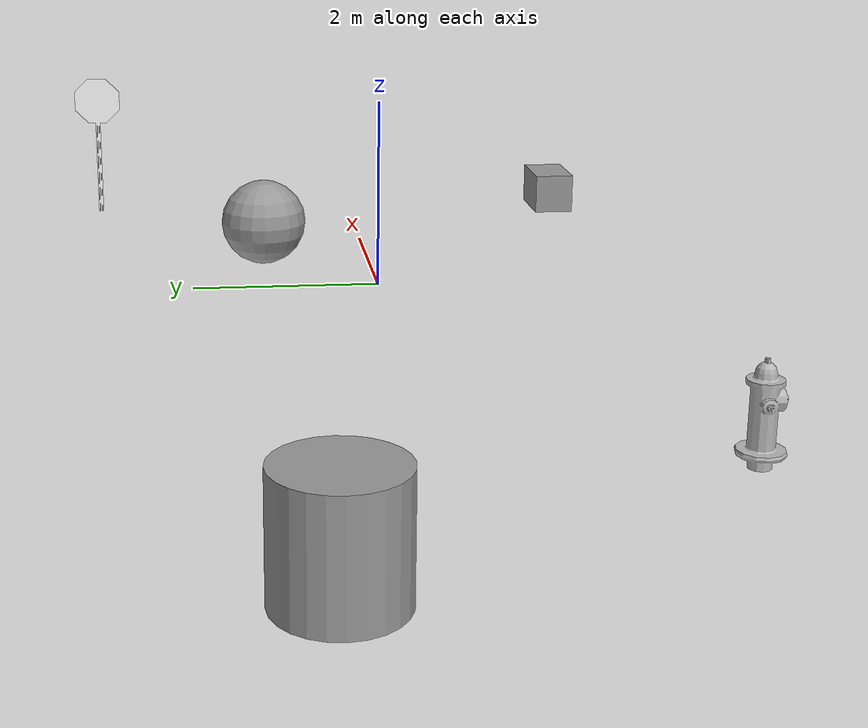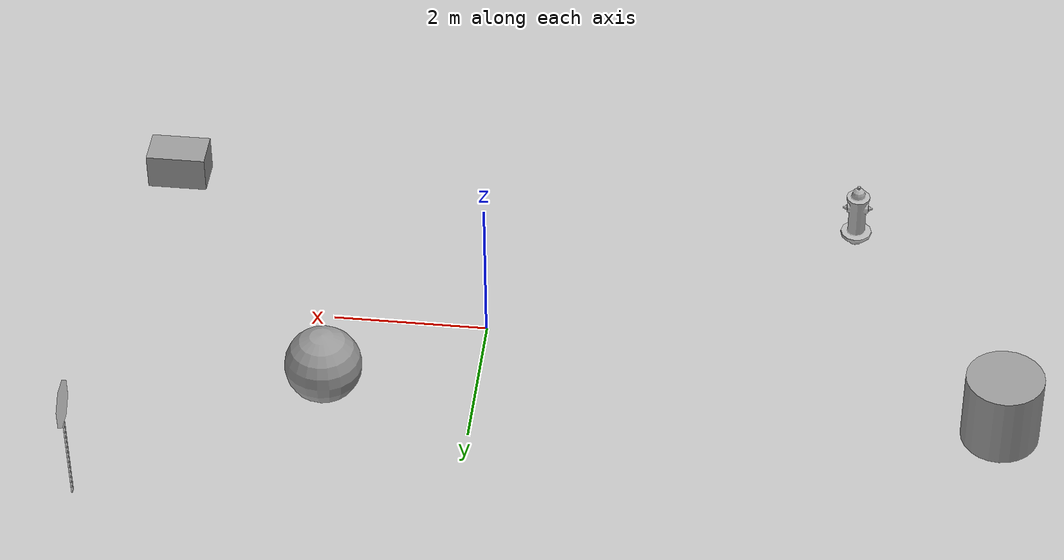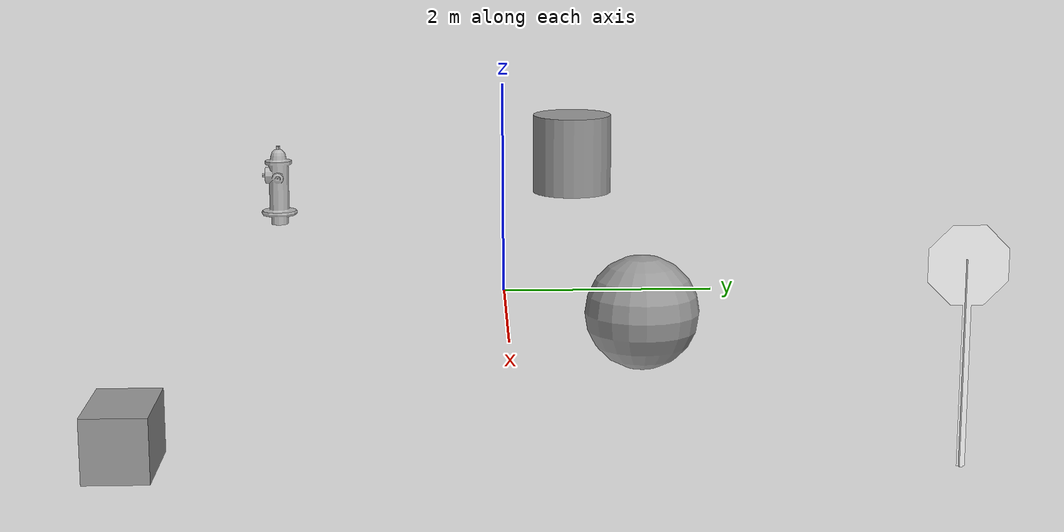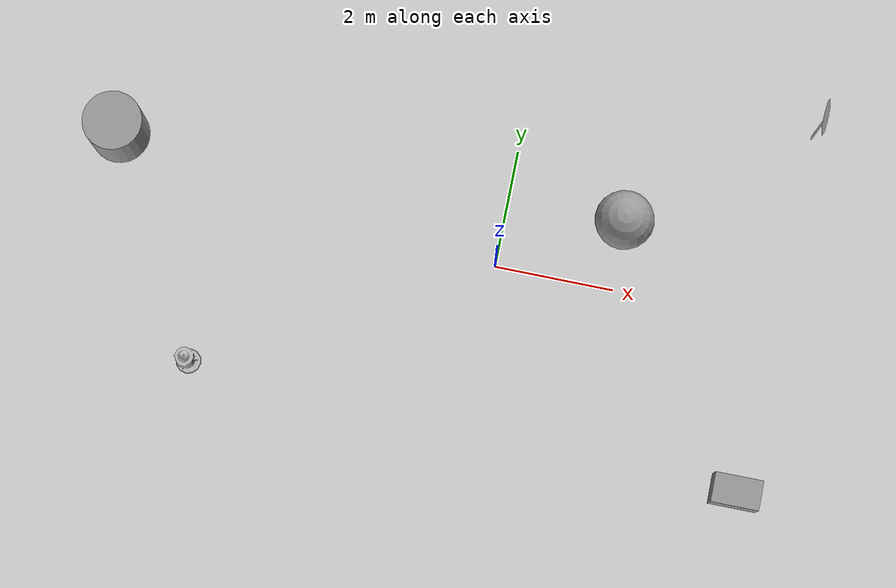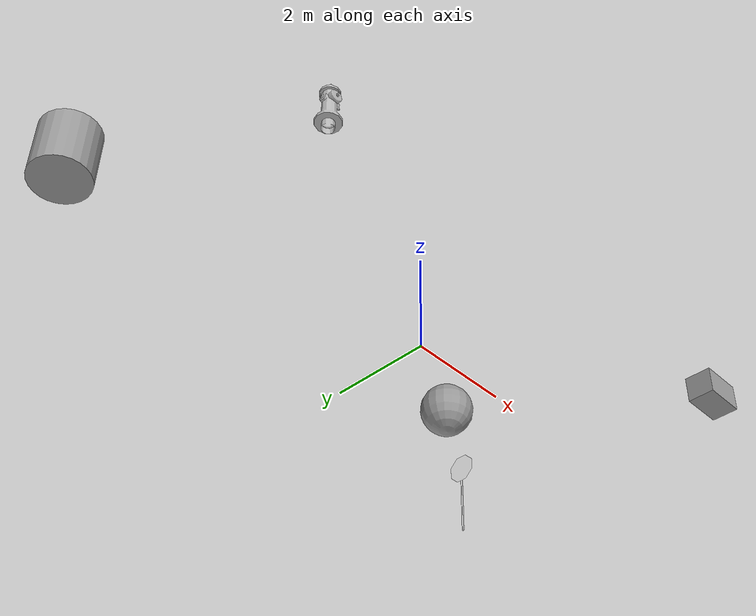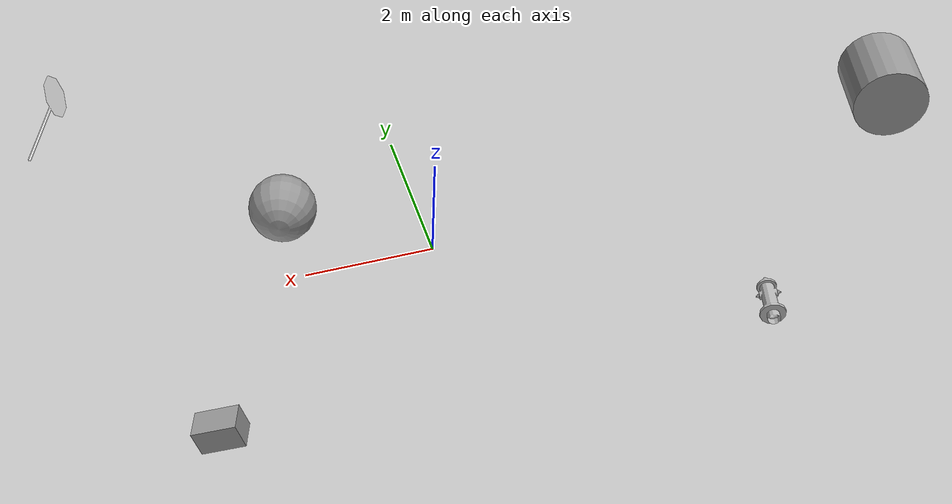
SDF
<?xml version='1.0'?>
<sdf version='1.6'>
  <model name='updated_world'>
    <link name='link_0'>
      <inertial>
        <mass>1</mass>
        <inertia>
          <ixx>0.1</ixx>
          <ixy>0</ixy>
          <ixz>0</ixz>
          <iyy>0.1</iyy>
          <iyz>0</iyz>
          <izz>0.1</izz>
        </inertia>
      </inertial>
      <pose frame=''>1.96116 1.15959 0.250673 0 -0 0</pose>
      <visual name='visual'>
        <pose frame=''>0 0 0 0 -0 0</pose>
        <geometry>
          <sphere>
            <radius>0.5</radius>
          </sphere>
        </geometry>
        <material>
          <lighting>1</lighting>
          <script>
            <uri>file://media/materials/scripts/gazebo.material</uri>
            <name>Gazebo/Grey</name>
          </script>
        </material>
        <transparency>0</transparency>
        <cast_shadows>1</cast_shadows>
      </visual>
      <collision name='collision'>
        <laser_retro>0</laser_retro>
        <max_contacts>10</max_contacts>
        <pose frame=''>0 0 0 0 -0 0</pose>
        <geometry>
          <sphere>
            <radius>0.5</radius>
          </sphere>
        </geometry>
        <surface>
          <friction>
            <ode>
              <mu>1</mu>
              <mu2>1</mu2>
              <fdir1>0 0 0</fdir1>
              <slip1>0</slip1>
              <slip2>0</slip2>
            </ode>
            <torsional>
              <coefficient>1</coefficient>
              <patch_radius>0</patch_radius>
              <surface_radius>0</surface_radius>
              <use_patch_radius>1</use_patch_radius>
              <ode>
                <slip>0</slip>
              </ode>
            </torsional>
          </friction>
          <bounce>
            <restitution_coefficient>0</restitution_coefficient>
            <threshold>1e+06</threshold>
          </bounce>
          <contact>
            <collide_without_contact>0</collide_without_contact>
            <collide_without_contact_bitmask>1</collide_without_contact_bitmask>
            <collide_bitmask>1</collide_bitmask>
            <ode>
              <soft_cfm>0</soft_cfm>
              <soft_erp>0.2</soft_erp>
              <kp>1e+13</kp>
              <kd>1</kd>
              <max_vel>0.01</max_vel>
              <min_depth>0</min_depth>
            </ode>
            <bullet>
              <split_impulse>1</split_impulse>
              <split_impulse_penetration_threshold>-0.01</split_impulse_penetration_threshold>
              <soft_cfm>0</soft_cfm>
              <soft_erp>0.2</soft_erp>
              <kp>1e+13</kp>
              <kd>1</kd>
            </bullet>
          </contact>
        </surface>
      </collision>
    </link>
    <link name='link_1'>
      <inertial>
        <mass>1</mass>
        <inertia>
          <ixx>0.166667</ixx>
          <ixy>0</ixy>
          <ixz>0</ixz>
          <iyy>0.166667</iyy>
          <iyz>0</iyz>
          <izz>0.166667</izz>
        </inertia>
        <pose frame=''>0 0 0 0 -0 0</pose>
      </inertial>
      <pose frame=''>4.60286 -2.90935 -0.002692 0 -0 0</pose>
      <gravity>1</gravity>
      <self_collide>0</self_collide>
      <kinematic>0</kinematic>
      <enable_wind>0</enable_wind>
      <visual name='visual'>
        <pose frame=''>0 0 0 0 -0 0</pose>
        <geometry>
          <box>
            <size>0.8 0.5 0.5</size>
          </box>
        </geometry>
        <material>
          <lighting>1</lighting>
          <script>
            <uri>file://media/materials/scripts/gazebo.material</uri>
            <name>Gazebo/Grey</name>
          </script>
          <shader type='vertex'>
            <normal_map>__default__</normal_map>
          </shader>
          <ambient>0.3 0.3 0.3 1</ambient>
          <diffuse>0.7 0.7 0.7 1</diffuse>
          <specular>0.01 0.01 0.01 1</specular>
          <emissive>0 0 0 1</emissive>
        </material>
        <transparency>0</transparency>
        <cast_shadows>1</cast_shadows>
      </visual>
      <collision name='collision'>
        <laser_retro>0</laser_retro>
        <max_contacts>10</max_contacts>
        <pose frame=''>0 0 0 0 -0 0</pose>
        <geometry>
          <box>
            <size>0.8 0.5 0.5</size>
          </box>
        </geometry>
        <surface>
          <friction>
            <ode>
              <mu>1</mu>
              <mu2>1</mu2>
              <fdir1>0 0 0</fdir1>
              <slip1>0</slip1>
              <slip2>0</slip2>
            </ode>
            <torsional>
              <coefficient>1</coefficient>
              <patch_radius>0</patch_radius>
              <surface_radius>0</surface_radius>
              <use_patch_radius>1</use_patch_radius>
              <ode>
                <slip>0</slip>
              </ode>
            </torsional>
          </friction>
          <bounce>
            <restitution_coefficient>0</restitution_coefficient>
            <threshold>1e+06</threshold>
          </bounce>
          <contact>
            <collide_without_contact>0</collide_without_contact>
            <collide_without_contact_bitmask>1</collide_without_contact_bitmask>
            <collide_bitmask>1</collide_bitmask>
            <ode>
              <soft_cfm>0</soft_cfm>
              <soft_erp>0.2</soft_erp>
              <kp>1e+13</kp>
              <kd>1</kd>
              <max_vel>0.01</max_vel>
              <min_depth>0</min_depth>
            </ode>
            <bullet>
              <split_impulse>1</split_impulse>
              <split_impulse_penetration_threshold>-0.01</split_impulse_penetration_threshold>
              <soft_cfm>0</soft_cfm>
              <soft_erp>0.2</soft_erp>
              <kp>1e+13</kp>
              <kd>1</kd>
            </bullet>
          </contact>
        </surface>
      </collision>
    </link>
    <link name='link_2'>
      <inertial>
        <mass>1</mass>
        <inertia>
          <ixx>0.145833</ixx>
          <ixy>0</ixy>
          <ixz>0</ixz>
          <iyy>0.145833</iyy>
          <iyz>0</iyz>
          <izz>0.125</izz>
        </inertia>
      </inertial>
      <pose frame=''>-6.69255 1.03223 0.250673 0 -0 0</pose>
      <visual name='visual'>
        <pose frame=''>0 0 0 0 -0 0</pose>
        <geometry>
          <cylinder>
            <radius>0.5</radius>
            <length>1</length>
          </cylinder>
        </geometry>
        <material>
          <lighting>1</lighting>
          <script>
            <uri>file://media/materials/scripts/gazebo.material</uri>
            <name>Gazebo/Grey</name>
          </script>
        </material>
        <transparency>0</transparency>
        <cast_shadows>1</cast_shadows>
      </visual>
      <collision name='collision'>
        <laser_retro>0</laser_retro>
        <max_contacts>10</max_contacts>
        <pose frame=''>0 0 0 0 -0 0</pose>
        <geometry>
          <cylinder>
            <radius>0.5</radius>
            <length>1</length>
          </cylinder>
        </geometry>
        <surface>
          <friction>
            <ode>
              <mu>1</mu>
              <mu2>1</mu2>
              <fdir1>0 0 0</fdir1>
              <slip1>0</slip1>
              <slip2>0</slip2>
            </ode>
            <torsional>
              <coefficient>1</coefficient>
              <patch_radius>0</patch_radius>
              <surface_radius>0</surface_radius>
              <use_patch_radius>1</use_patch_radius>
              <ode>
                <slip>0</slip>
              </ode>
            </torsional>
          </friction>
          <bounce>
            <restitution_coefficient>0</restitution_coefficient>
            <threshold>1e+06</threshold>
          </bounce>
          <contact>
            <collide_without_contact>0</collide_without_contact>
            <collide_without_contact_bitmask>1</collide_without_contact_bitmask>
            <collide_bitmask>1</collide_bitmask>
            <ode>
              <soft_cfm>0</soft_cfm>
              <soft_erp>0.2</soft_erp>
              <kp>1e+13</kp>
              <kd>1</kd>
              <max_vel>0.01</max_vel>
              <min_depth>0</min_depth>
            </ode>
            <bullet>
              <split_impulse>1</split_impulse>
              <split_impulse_penetration_threshold>-0.01</split_impulse_penetration_threshold>
              <soft_cfm>0</soft_cfm>
              <soft_erp>0.2</soft_erp>
              <kp>1e+13</kp>
              <kd>1</kd>
            </bullet>
          </contact>
        </surface>
      </collision>
    </link>
    <model name='Stop Sign'>
      <static>1</static>
      <link name='link'>
        <collision name='collision'>
          <geometry>
            <mesh>
              <uri>model://stop_sign/meshes/stop_sign.dae</uri>
            </mesh>
          </geometry>
        </collision>
        <visual name='visual'>
          <geometry>
            <mesh>
              <uri>model://stop_sign/meshes/stop_sign.dae</uri>
            </mesh>
          </geometry>
          <material>
            <script>
              <uri>model://stop_sign/materials/scripts</uri>
              <uri>model://stop_sign/materials/textures</uri>
              <name>StopSign/Diffuse</name>
            </script>
          </material>
        </visual>
      </link>
      <pose frame=''>4.83137 3.27144 -0.249327 0 0 -1.57473</pose>
    </model>
    <model name='fire_hydrant'>
      <static>1</static>
      <link name='link'>
        <collision name='collision'>
          <geometry>
            <mesh>
              <uri>model://fire_hydrant/meshes/fire_hydrant.dae</uri>
            </mesh>
          </geometry>
        </collision>
        <visual name='visual'>
          <geometry>
            <mesh>
              <uri>model://fire_hydrant/meshes/fire_hydrant.dae</uri>
            </mesh>
          </geometry>
        </visual>
      </link>
      <pose frame=''>-4.70285 -2.5539 -0.249327 0 -0 0</pose>
    </model>
    <static>0</static>
    <allow_auto_disable>1</allow_auto_disable>
  </model>
</sdf>
